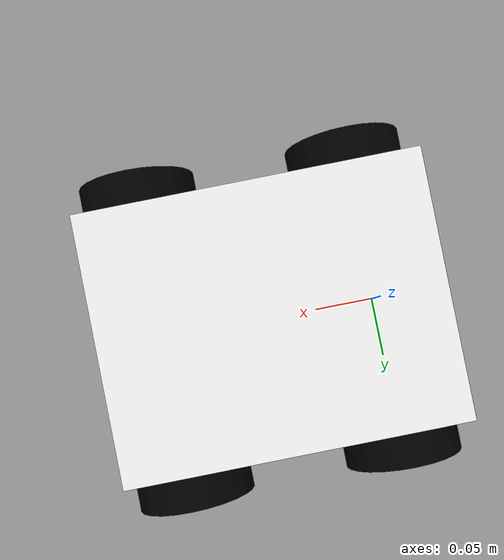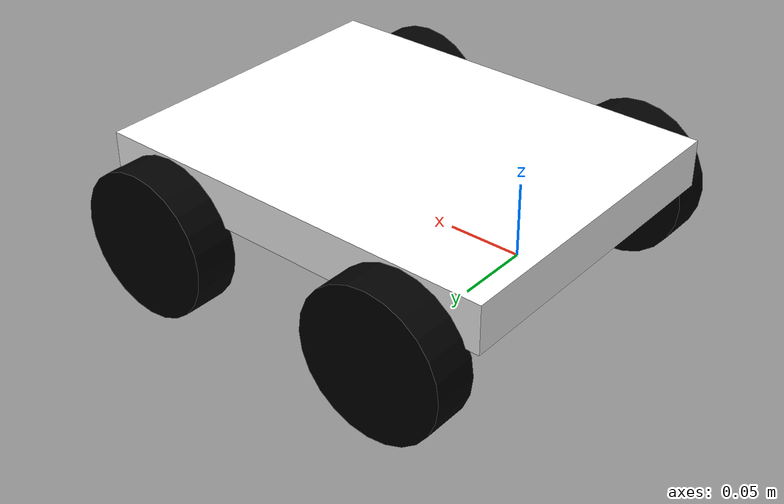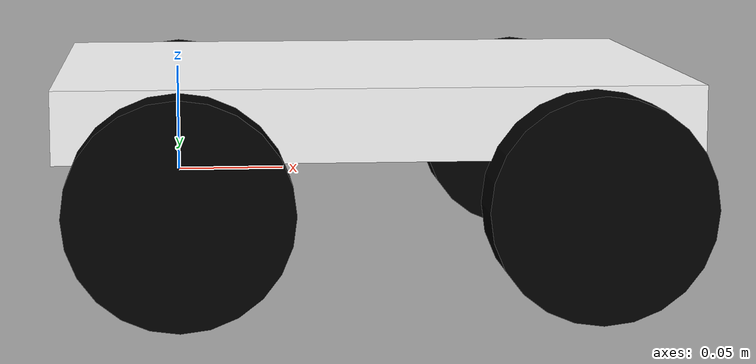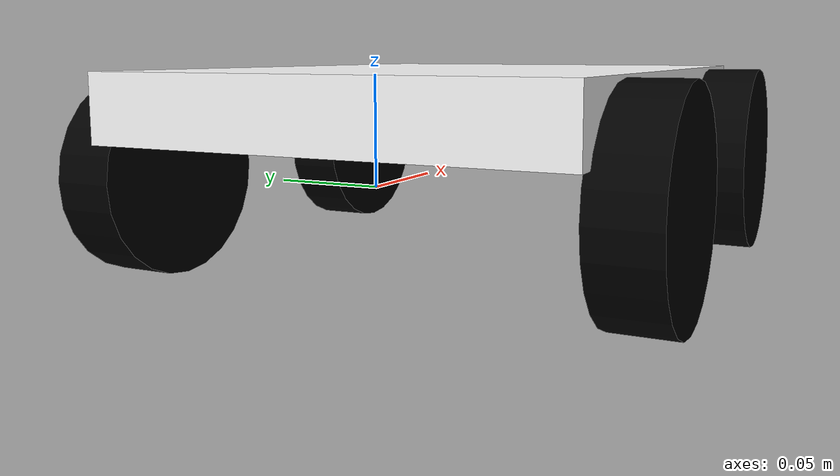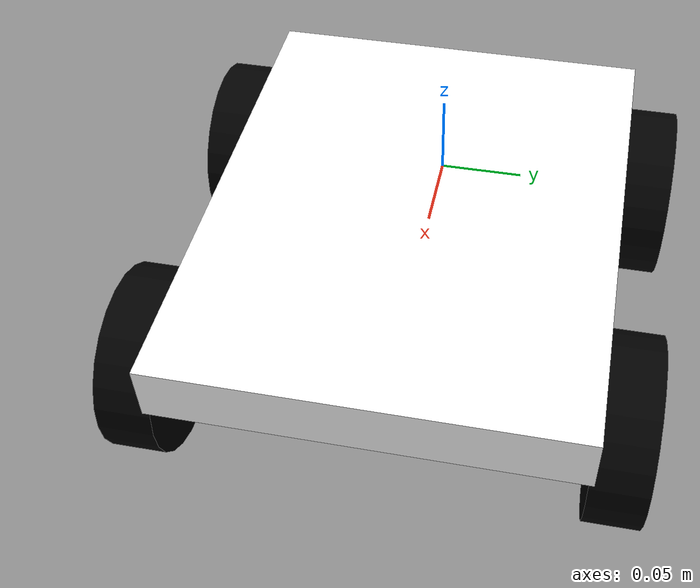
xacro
<?xml version="1.0"?>
<robot xmlns:xacro="http://www.ros.org/wiki/xacro" >

<xacro:include filename="inertial_macros.xacro" />

    <material name="white">
        <color rgba="1 1 1 1" />
    </material>

    <material name="orange">
        <color rgba="1 0.3 0.1 1"/>
    </material>

    <material name="blue">
        <color rgba="0.2 0.2 1 1"/>
    </material>

    <material name="black">
        <color rgba="0 0 0 1"/>
    </material>

    <material name="red">
        <color rgba="1 0 0 1"/>
    </material>

    <!-- BASE LINK -->
    <link name="base_link">
    </link>
    <link name="base_footprint">
    </link>

    <joint name="base_footprint_joint" type="fixed">
        <parent link="base_link"/>
        <child link="base_footprint"/>
        <origin xyz="0 0 0" rpy="0 0 0"/>
    </joint>

    <!-- CHASSIS LINK -->

    <joint name="chassis_joint" type="fixed">
        <parent link="base_link"/>
        <child link="chassis"/>
        <origin xyz ="-0.055 0 0" />
    </joint>

    <link name="chassis">
        <visual>
            <origin xyz="0.14375 0 0.035"/>
            <geometry>
                <box size="0.2875 0.225 0.0325" />
            </geometry>
            <material name="white" />
        </visual>
        <collision>
            <origin xyz="0.14375 0 0.05"/>
            <geometry>
                <box size="0.2875 0.225 0.0325" />
            </geometry>
        </collision>
        <xacro:inertial_box mass="0.5" x="0.2875" y="0.225" z="0.0325">
            <origin xyz="0.14375 0 0.05" rpy="0 0 0"/>
        </xacro:inertial_box>
    </link>

    <joint name="left_wheel_joint" type="continuous">
        <parent link="base_link"/>
        <child link="left_wheel_back"/>
        <origin xyz="0 0.125 0" rpy="-${pi/2} 0 0" />
        <axis xyz="0 0 1"/>
    </joint>

    <link name="left_wheel_back">
    <visual>
      <geometry>
        <cylinder radius="0.05" length="0.03" />
      </geometry>
      <material name="black" />
    </visual>
    <collision>
      <geometry>
        <cylinder radius="0.05" length="0.03" />
      </geometry>
    </collision>
    <xacro:inertial_cylinder mass="0.1" length="0.03" radius="0.05">
            <origin xyz="0 0 0" rpy="0 0 0"/>
        </xacro:inertial_cylinder>
    </link>

    <joint name="right_wheel_joint" type="continuous">
        <parent link="base_link"/>
        <child link="right_wheel_back"/>
        <origin xyz="0 -0.125 0" rpy="${pi/2} 0 0" />
        <axis xyz="0 0 -1"/>
    </joint>

    <link name="right_wheel_back">
    <visual>
      <geometry>
        <cylinder radius="0.05" length="0.03" />
      </geometry>
      <material name="black" />
    </visual>
    <collision>
      <geometry>
        <cylinder radius="0.05" length="0.03" />
      </geometry>
    </collision>
    <xacro:inertial_cylinder mass="0.1" length="0.03" radius="0.05">
            <origin xyz="0 0 0" rpy="0 0 0"/>
        </xacro:inertial_cylinder>
    </link>

    <joint name="left_wheel_joint_front" type="fixed">
        <parent link="base_link"/>
        <child link="left_wheel_front"/>
        <origin xyz="0.1825 0.125 0" rpy="-${pi/2} 0 0" />
        <axis xyz="0 0 1"/>
    </joint>

    <link name="left_wheel_front">
    <visual>
      <geometry>
        <cylinder radius="0.05" length="0.03" />
      </geometry>
      <material name="black" />
    </visual>
    <collision>
      <geometry>
        <cylinder radius="0.05" length="0.03" />
      </geometry>
      <material name="black" />
    </collision>
    <xacro:inertial_cylinder mass="0.1" length="0.03" radius="0.05">
            <origin xyz="0 0 0" rpy="0 0 0"/>
        </xacro:inertial_cylinder>
    </link>

    <joint name="right_wheel_joint_front" type="fixed">
        <parent link="base_link"/>
        <child link="right_wheel_front"/>
        <origin xyz="0.1825 -0.125 0" rpy="${pi/2} 0 0" />
        <axis xyz="0 0 -1"/>
    </joint>

    <link name="right_wheel_front">
    <visual>
      <geometry>
        <cylinder radius="0.05" length="0.03" />
      </geometry>
      <material name="black" />
    </visual>
    <collision>
      <geometry>
        <cylinder radius="0.05" length="0.03" />
      </geometry>
      <material name="black" />
    </collision>
    <xacro:inertial_cylinder mass="0.1" length="0.03" radius="0.05">
            <origin xyz="0 0 0" rpy="0 0 0"/>
        </xacro:inertial_cylinder>
    </link>

</robot>
